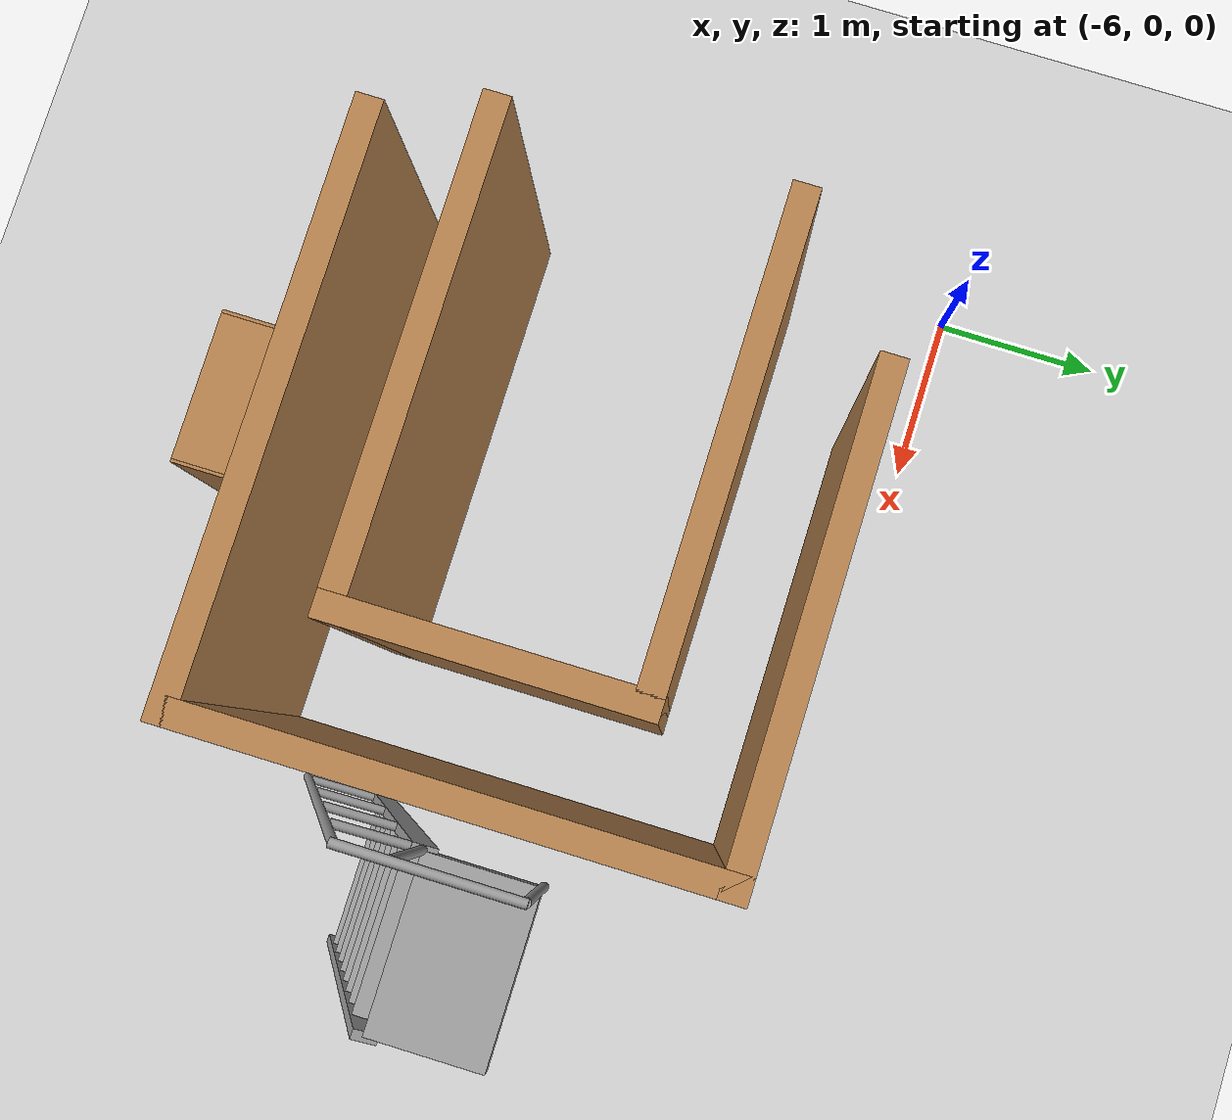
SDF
<sdf version="1.7">
 <world name="default">
  <light name="sun" type="directional">
   <pose>0 0 10 0 -0 0</pose>
   <diffuse>0.8 0.8 0.8 1</diffuse>
   <specular>0.2 0.2 0.2 1</specular>
   <attenuation>
    <range>1000</range>
    <constant>0.9</constant>
    <linear>0.01</linear>
    <quadratic>0.001</quadratic>
   </attenuation>
   <direction>-0.5 0.1 -0.9</direction>
   <spot><inner_angle>0</inner_angle><outer_angle>0</outer_angle><falloff>0</falloff></spot>
  </light>
  <model name="ground_plane">
   <static>1</static>
   <link name="link">
    <collision name="collision">
     <geometry><plane><normal>0 0 1</normal><size>100 100</size></plane></geometry>
     <surface>
      <contact><collide_bitmask>65535</collide_bitmask></contact>
      <friction><ode><mu>100</mu><mu2>50</mu2></ode></friction>
     </surface>
    </collision>
    <visual name="visual">
     <cast_shadows>0</cast_shadows>
     <geometry><plane><normal>0 0 1</normal><size>100 100</size></plane></geometry>
     <material>
      <script><uri>file://media/materials/scripts/gazebo.material</uri><name>Gazebo/Grey</name></script>
     </material>
    </visual>
   </link>
  </model>
  <gravity>0 0 -9.8</gravity>
  <magnetic_field>6e-06 2.3e-05 -4.2e-05</magnetic_field>
  <atmosphere type="adiabatic"/>
  <physics type="ode">
   <max_step_size>0.001</max_step_size>
   <real_time_factor>1</real_time_factor>
   <real_time_update_rate>1000</real_time_update_rate>
  </physics>
  <scene><ambient>0.4 0.4 0.4 1</ambient><background>0.7 0.7 0.7 1</background><shadows>1</shadows></scene>
  <spherical_coordinates>
   <surface_model>EARTH_WGS84</surface_model>
   <latitude_deg>0</latitude_deg>
   <longitude_deg>0</longitude_deg>
   <elevation>0</elevation>
   <heading_deg>0</heading_deg>
  </spherical_coordinates>
  <model name="model_a2">
   <pose>-2.3197 -1.79242 0 0 -0 0</pose>
   <link name="Wall_0">
    <collision name="Wall_0_Collision">
     <geometry><box><size>2.75 0.15 2.5</size></box></geometry>
     <pose>0 0 1.25 0 -0 0</pose>
    </collision>
    <visual name="Wall_0_Visual">
     <pose>0 0 1.25 0 -0 0</pose>
     <geometry><box><size>2.75 0.15 2.5</size></box></geometry>
     <material>
      <script><uri>file://media/materials/scripts/gazebo.material</uri><name>Gazebo/Wood</name></script>
      <ambient>1 1 1 1</ambient>
     </material>
     <meta><layer>0</layer></meta>
    </visual>
    <pose>-1.3325 1.425 0 0 -0 0</pose>
   </link>
   <link name="Wall_1">
    <collision name="Wall_1_Collision">
     <geometry><box><size>3 0.15 2.5</size></box></geometry>
     <pose>0 0 1.25 0 -0 0</pose>
    </collision>
    <visual name="Wall_1_Visual">
     <pose>0 0 1.25 0 -0 0</pose>
     <geometry><box><size>3 0.15 2.5</size></box></geometry>
     <material>
      <script><uri>file://media/materials/scripts/gazebo.material</uri><name>Gazebo/Wood</name></script>
      <ambient>1 1 1 1</ambient>
     </material>
     <meta><layer>0</layer></meta>
    </visual>
    <pose>-0.0325 -0 0 0 -0 -1.5708</pose>
   </link>
   <link name="Wall_2">
    <collision name="Wall_2_Collision">
     <geometry><box><size>3.25 0.15 2.5</size></box></geometry>
     <pose>0 0 1.25 0 -0 0</pose>
    </collision>
    <visual name="Wall_2_Visual">
     <pose>0 0 1.25 0 -0 0</pose>
     <geometry><box><size>3.25 0.15 2.5</size></box></geometry>
     <material>
      <script><uri>file://media/materials/scripts/gazebo.material</uri><name>Gazebo/Wood</name></script>
      <ambient>1 1 1 1</ambient>
     </material>
     <meta><layer>0</layer></meta>
    </visual>
    <pose>-1.5825 -1.425 0 0 -0 3.14159</pose>
   </link>
   <link name="Wall_4">
    <collision name="Wall_4_Collision">
     <geometry><box><size>2.75 0.15 2.5</size></box></geometry>
     <pose>0 0 1.25 0 -0 0</pose>
    </collision>
    <visual name="Wall_4_Visual">
     <pose>0 0 1.25 0 -0 0</pose>
     <geometry><box><size>2.75 0.15 2.5</size></box></geometry>
     <material>
      <script><uri>file://media/materials/scripts/gazebo.material</uri><name>Gazebo/Wood</name></script>
      <ambient>1 1 1 1</ambient>
     </material>
     <meta><layer>0</layer></meta>
    </visual>
    <pose>-2.0325 0.775 0 0 -0 0</pose>
   </link>
   <link name="Wall_5">
    <collision name="Wall_5_Collision">
     <geometry><box><size>1.75 0.15 2.5</size></box></geometry>
     <pose>0 0 1.25 0 -0 0</pose>
    </collision>
    <visual name="Wall_5_Visual">
     <pose>0 0 1.25 0 -0 0</pose>
     <geometry><box><size>1.75 0.15 2.5</size></box></geometry>
     <material>
      <script><uri>file://media/materials/scripts/gazebo.material</uri><name>Gazebo/Wood</name></script>
      <ambient>1 1 1 1</ambient>
     </material>
     <meta><layer>0</layer></meta>
    </visual>
    <pose>-0.7325 -0.025 0 0 -0 -1.5708</pose>
   </link>
   <link name="Wall_6">
    <collision name="Wall_6_Collision">
     <geometry><box><size>2.75 0.15 2.5</size></box></geometry>
     <pose>0 0 1.25 0 -0 0</pose>
    </collision>
    <visual name="Wall_6_Visual">
     <pose>0 0 1.25 0 -0 0</pose>
     <geometry><box><size>2.75 0.15 2.5</size></box></geometry>
     <material>
      <script><uri>file://media/materials/scripts/gazebo.material</uri><name>Gazebo/Wood</name></script>
      <ambient>1 1 1 1</ambient>
     </material>
     <meta><layer>0</layer></meta>
    </visual>
    <pose>-2.0325 -0.825 0 0 -0 3.14159</pose>
   </link>
   <static>1</static>
  </model>
  <model name="ladder_75deg_1rails">
   <static>1</static>
   <link name="step0">
    <pose>0 0.071453 0.266667 0 -0 0</pose>
    <inertial>
     <mass>9.75482</mass>
     <inertia>
      <ixx>0.00957124</ixx>
      <iyy>0.65963</iyy>
      <izz>0.666842</izz>
      <ixy>0</ixy>
      <ixz>0</ixz>
      <iyz>0</iyz>
     </inertia>
    </inertial>
    <collision name="collision"><geometry><box><size>0.9 0.1016 0.0381</size></box></geometry></collision>
    <visual name="visual">
     <geometry><box><size>0.9 0.1016 0.0381</size></box></geometry>
     <material>
      <script><uri>file://media/materials/scripts/gazebo.material</uri><name>Gazebo/Grey</name></script>
     </material>
    </visual>
   </link>
   <link name="step1">
    <pose>0 0.142906 0.533333 0 -0 0</pose>
    <inertial>
     <mass>9.75482</mass>
     <inertia>
      <ixx>0.00957124</ixx>
      <iyy>0.65963</iyy>
      <izz>0.666842</izz>
      <ixy>0</ixy>
      <ixz>0</ixz>
      <iyz>0</iyz>
     </inertia>
    </inertial>
    <collision name="collision"><geometry><box><size>0.9 0.1016 0.0381</size></box></geometry></collision>
    <visual name="visual">
     <geometry><box><size>0.9 0.1016 0.0381</size></box></geometry>
     <material>
      <script><uri>file://media/materials/scripts/gazebo.material</uri><name>Gazebo/Grey</name></script>
     </material>
    </visual>
   </link>
   <link name="step2">
    <pose>0 0.214359 0.8 0 -0 0</pose>
    <inertial>
     <mass>9.75482</mass>
     <inertia>
      <ixx>0.00957124</ixx>
      <iyy>0.65963</iyy>
      <izz>0.666842</izz>
      <ixy>0</ixy>
      <ixz>0</ixz>
      <iyz>0</iyz>
     </inertia>
    </inertial>
    <collision name="collision"><geometry><box><size>0.9 0.1016 0.0381</size></box></geometry></collision>
    <visual name="visual">
     <geometry><box><size>0.9 0.1016 0.0381</size></box></geometry>
     <material>
      <script><uri>file://media/materials/scripts/gazebo.material</uri><name>Gazebo/Grey</name></script>
     </material>
    </visual>
   </link>
   <link name="step3">
    <pose>0 0.285812 1.06667 0 -0 0</pose>
    <inertial>
     <mass>9.75482</mass>
     <inertia>
      <ixx>0.00957124</ixx>
      <iyy>0.65963</iyy>
      <izz>0.666842</izz>
      <ixy>0</ixy>
      <ixz>0</ixz>
      <iyz>0</iyz>
     </inertia>
    </inertial>
    <collision name="collision"><geometry><box><size>0.9 0.1016 0.0381</size></box></geometry></collision>
    <visual name="visual">
     <geometry><box><size>0.9 0.1016 0.0381</size></box></geometry>
     <material>
      <script><uri>file://media/materials/scripts/gazebo.material</uri><name>Gazebo/Grey</name></script>
     </material>
    </visual>
   </link>
   <link name="step4">
    <pose>0 0.357266 1.33333 0 -0 0</pose>
    <inertial>
     <mass>9.75482</mass>
     <inertia>
      <ixx>0.00957124</ixx>
      <iyy>0.65963</iyy>
      <izz>0.666842</izz>
      <ixy>0</ixy>
      <ixz>0</ixz>
      <iyz>0</iyz>
     </inertia>
    </inertial>
    <collision name="collision"><geometry><box><size>0.9 0.1016 0.0381</size></box></geometry></collision>
    <visual name="visual">
     <geometry><box><size>0.9 0.1016 0.0381</size></box></geometry>
     <material>
      <script><uri>file://media/materials/scripts/gazebo.material</uri><name>Gazebo/Grey</name></script>
     </material>
    </visual>
   </link>
   <link name="step5">
    <pose>0 0.428719 1.6 0 -0 0</pose>
    <inertial>
     <mass>9.75482</mass>
     <inertia>
      <ixx>0.00957124</ixx>
      <iyy>0.65963</iyy>
      <izz>0.666842</izz>
      <ixy>0</ixy>
      <ixz>0</ixz>
      <iyz>0</iyz>
     </inertia>
    </inertial>
    <collision name="collision"><geometry><box><size>0.9 0.1016 0.0381</size></box></geometry></collision>
    <visual name="visual">
     <geometry><box><size>0.9 0.1016 0.0381</size></box></geometry>
     <material>
      <script><uri>file://media/materials/scripts/gazebo.material</uri><name>Gazebo/Grey</name></script>
     </material>
    </visual>
   </link>
   <link name="step6">
    <pose>0 0.500172 1.86667 0 -0 0</pose>
    <inertial>
     <mass>9.75482</mass>
     <inertia>
      <ixx>0.00957124</ixx>
      <iyy>0.65963</iyy>
      <izz>0.666842</izz>
      <ixy>0</ixy>
      <ixz>0</ixz>
      <iyz>0</iyz>
     </inertia>
    </inertial>
    <collision name="collision"><geometry><box><size>0.9 0.1016 0.0381</size></box></geometry></collision>
    <visual name="visual">
     <geometry><box><size>0.9 0.1016 0.0381</size></box></geometry>
     <material>
      <script><uri>file://media/materials/scripts/gazebo.material</uri><name>Gazebo/Grey</name></script>
     </material>
    </visual>
   </link>
   <link name="step7">
    <pose>0 0.571625 2.13333 0 -0 0</pose>
    <inertial>
     <mass>9.75482</mass>
     <inertia>
      <ixx>0.00957124</ixx>
      <iyy>0.65963</iyy>
      <izz>0.666842</izz>
      <ixy>0</ixy>
      <ixz>0</ixz>
      <iyz>0</iyz>
     </inertia>
    </inertial>
    <collision name="collision"><geometry><box><size>0.9 0.1016 0.0381</size></box></geometry></collision>
    <visual name="visual">
     <geometry><box><size>0.9 0.1016 0.0381</size></box></geometry>
     <material>
      <script><uri>file://media/materials/scripts/gazebo.material</uri><name>Gazebo/Grey</name></script>
     </material>
    </visual>
   </link>
   <link name="landing">
    <pose>0 0.943078 2.4 0 -0 0</pose>
    <inertial>
     <mass>57.6072</mass>
     <inertia><ixx>1.73518</ixx><iyy>3.89545</iyy><izz>5.6167</izz><ixy>0</ixy><ixz>0</ixz><iyz>0</iyz></inertia>
    </inertial>
    <collision name="collision"><geometry><box><size>0.9 0.6 0.1016</size></box></geometry></collision>
    <visual name="visual">
     <geometry><box><size>0.9 0.6 0.1016</size></box></geometry>
     <material>
      <script><uri>file://media/materials/scripts/gazebo.material</uri><name>Gazebo/Grey</name></script>
     </material>
    </visual>
   </link>
   <link name="left_side_wall">
    <pose>-0.45 0.321539 1.2 1.309 -0 0</pose>
    <collision name="collision"><geometry><box><size>0.0508 2.56466 0.13</size></box></geometry></collision>
    <visual name="visual">
     <geometry><box><size>0.0508 2.56466 0.13</size></box></geometry>
     <material>
      <script><uri>file://media/materials/scripts/gazebo.material</uri><name>Gazebo/Grey</name></script>
     </material>
    </visual>
   </link>
   <link name="right_side_wall">
    <pose>0.45 0.321539 1.2 1.309 -0 0</pose>
    <collision name="collision"><geometry><box><size>0.0508 2.56466 0.13</size></box></geometry></collision>
    <visual name="visual">
     <geometry><box><size>0.0508 2.56466 0.13</size></box></geometry>
     <material>
      <script><uri>file://media/materials/scripts/gazebo.material</uri><name>Gazebo/Grey</name></script>
     </material>
    </visual>
   </link>
   <link name="left_railing_long">
    <pose>-0.45 -0.053461 1.66651 -0.261799 0 0</pose>
    <collision name="collision">
     <geometry><cylinder><radius>0.02413</radius><length>3.51529</length></cylinder></geometry>
    </collision>
    <visual name="visual">
     <geometry><cylinder><radius>0.02413</radius><length>3.51529</length></cylinder></geometry>
     <material>
      <script><uri>file://media/materials/scripts/gazebo.material</uri><name>Gazebo/Grey</name></script>
     </material>
    </visual>
   </link>
   <link name="left_railing_upright0">
    <pose>-0.45 -0.210089 0.056293 1.309 -0 0</pose>
    <collision name="collision">
     <geometry><cylinder><radius>0.02413</radius><length>0.482963</length></cylinder></geometry>
    </collision>
    <visual name="visual">
     <geometry><cylinder><radius>0.02413</radius><length>0.482963</length></cylinder></geometry>
     <material>
      <script><uri>file://media/materials/scripts/gazebo.material</uri><name>Gazebo/Grey</name></script>
     </material>
    </visual>
   </link>
   <link name="left_railing_upright1">
    <pose>-0.45 0.00427 0.856293 1.309 -0 0</pose>
    <collision name="collision">
     <geometry><cylinder><radius>0.02413</radius><length>0.482963</length></cylinder></geometry>
    </collision>
    <visual name="visual">
     <geometry><cylinder><radius>0.02413</radius><length>0.482963</length></cylinder></geometry>
     <material>
      <script><uri>file://media/materials/scripts/gazebo.material</uri><name>Gazebo/Grey</name></script>
     </material>
    </visual>
   </link>
   <link name="left_railing_upright2">
    <pose>-0.45 0.21863 1.65629 1.309 -0 0</pose>
    <collision name="collision">
     <geometry><cylinder><radius>0.02413</radius><length>0.482963</length></cylinder></geometry>
    </collision>
    <visual name="visual">
     <geometry><cylinder><radius>0.02413</radius><length>0.482963</length></cylinder></geometry>
     <material>
      <script><uri>file://media/materials/scripts/gazebo.material</uri><name>Gazebo/Grey</name></script>
     </material>
    </visual>
   </link>
   <link name="left_railing_upright3">
    <pose>-0.45 0.432989 2.45629 1.309 -0 0</pose>
    <collision name="collision">
     <geometry><cylinder><radius>0.02413</radius><length>0.482963</length></cylinder></geometry>
    </collision>
    <visual name="visual">
     <geometry><cylinder><radius>0.02413</radius><length>0.482963</length></cylinder></geometry>
     <material>
      <script><uri>file://media/materials/scripts/gazebo.material</uri><name>Gazebo/Grey</name></script>
     </material>
    </visual>
   </link>
   <link name="left_railing_landing_top">
    <pose>-0.45 0.818078 3.35714 1.5708 -0 0</pose>
    <collision name="collision">
     <geometry><cylinder><radius>0.02413</radius><length>0.87413</length></cylinder></geometry>
    </collision>
    <visual name="visual">
     <geometry><cylinder><radius>0.02413</radius><length>0.87413</length></cylinder></geometry>
     <material>
      <script><uri>file://media/materials/scripts/gazebo.material</uri><name>Gazebo/Grey</name></script>
     </material>
    </visual>
   </link>
   <link name="left_railing_landing_upright_0">
    <pose>-0.45 0.643078 2.86651 0 -0 0</pose>
    <collision name="collision">
     <geometry><cylinder><radius>0.02413</radius><length>0.933013</length></cylinder></geometry>
    </collision>
    <visual name="visual">
     <geometry><cylinder><radius>0.02413</radius><length>0.933013</length></cylinder></geometry>
     <material>
      <script><uri>file://media/materials/scripts/gazebo.material</uri><name>Gazebo/Grey</name></script>
     </material>
    </visual>
   </link>
   <link name="left_railing_landing_upright_1">
    <pose>-0.45 1.24308 2.86651 0 -0 0</pose>
    <collision name="collision">
     <geometry><cylinder><radius>0.02413</radius><length>0.933013</length></cylinder></geometry>
    </collision>
    <visual name="visual">
     <geometry><cylinder><radius>0.02413</radius><length>0.933013</length></cylinder></geometry>
     <material>
      <script><uri>file://media/materials/scripts/gazebo.material</uri><name>Gazebo/Grey</name></script>
     </material>
    </visual>
   </link>
   <pose>-1.63749 -2.48021 0 0 -0 0</pose>
  </model>
  <model name="bookshelf">
   <static>1</static>
   <link name="link">
    <inertial><mass>1</mass></inertial>
    <collision name="back">
     <pose>0 0.005 0.6 0 -0 0</pose>
     <geometry><box><size>0.9 0.01 1.2</size></box></geometry>
    </collision>
    <visual name="visual1">
     <pose>0 0.005 0.6 0 -0 0</pose>
     <geometry><box><size>0.9 0.01 1.2</size></box></geometry>
     <material>
      <script><uri>file://media/materials/scripts/gazebo.material</uri><name>Gazebo/Wood</name></script>
     </material>
    </visual>
    <collision name="left_side">
     <pose>0.45 -0.195 0.6 0 -0 0</pose>
     <geometry><box><size>0.02 0.4 1.2</size></box></geometry>
    </collision>
    <visual name="visual2">
     <pose>0.45 -0.195 0.6 0 -0 0</pose>
     <geometry><box><size>0.02 0.4 1.2</size></box></geometry>
     <material>
      <script><uri>file://media/materials/scripts/gazebo.material</uri><name>Gazebo/Wood</name></script>
     </material>
    </visual>
    <collision name="right_side">
     <pose>-0.45 -0.195 0.6 0 -0 0</pose>
     <geometry><box><size>0.02 0.4 1.2</size></box></geometry>
    </collision>
    <visual name="visual3">
     <pose>-0.45 -0.195 0.6 0 -0 0</pose>
     <geometry><box><size>0.02 0.4 1.2</size></box></geometry>
     <material>
      <script><uri>file://media/materials/scripts/gazebo.material</uri><name>Gazebo/Wood</name></script>
     </material>
    </visual>
    <collision name="bottom">
     <pose>0 -0.195 0.03 0 -0 0</pose>
     <geometry><box><size>0.88 0.4 0.06</size></box></geometry>
    </collision>
    <visual name="visual4">
     <pose>0 -0.195 0.03 0 -0 0</pose>
     <geometry><box><size>0.88 0.4 0.06</size></box></geometry>
     <material>
      <script><uri>file://media/materials/scripts/gazebo.material</uri><name>Gazebo/Wood</name></script>
     </material>
    </visual>
    <collision name="top">
     <pose>0 -0.195 1.19 0 -0 0</pose>
     <geometry><box><size>0.88 0.4 0.02</size></box></geometry>
    </collision>
    <visual name="visual5">
     <pose>0 -0.195 1.19 0 -0 0</pose>
     <geometry><box><size>0.88 0.4 0.02</size></box></geometry>
     <material>
      <script><uri>file://media/materials/scripts/gazebo.material</uri><name>Gazebo/Wood</name></script>
     </material>
    </visual>
    <collision name="low_shelf">
     <pose>0 -0.195 0.43 0 -0 0</pose>
     <geometry><box><size>0.88 0.4 0.02</size></box></geometry>
    </collision>
    <visual name="visual6">
     <pose>0 -0.195 0.43 0 -0 0</pose>
     <geometry><box><size>0.88 0.4 0.02</size></box></geometry>
     <material>
      <script><uri>file://media/materials/scripts/gazebo.material</uri><name>Gazebo/Wood</name></script>
     </material>
    </visual>
    <collision name="high_shelf">
     <pose>0 -0.195 0.8 0 -0 0</pose>
     <geometry><box><size>0.88 0.4 0.02</size></box></geometry>
    </collision>
    <visual name="visual7">
     <pose>0 -0.195 0.8 0 -0 0</pose>
     <geometry><box><size>0.88 0.4 0.02</size></box></geometry>
     <material>
      <script><uri>file://media/materials/scripts/gazebo.material</uri><name>Gazebo/Wood</name></script>
     </material>
    </visual>
   </link>
   <pose>-4.07356 -3.62973 0 0 -0 0</pose>
  </model>
 </world>
</sdf>
